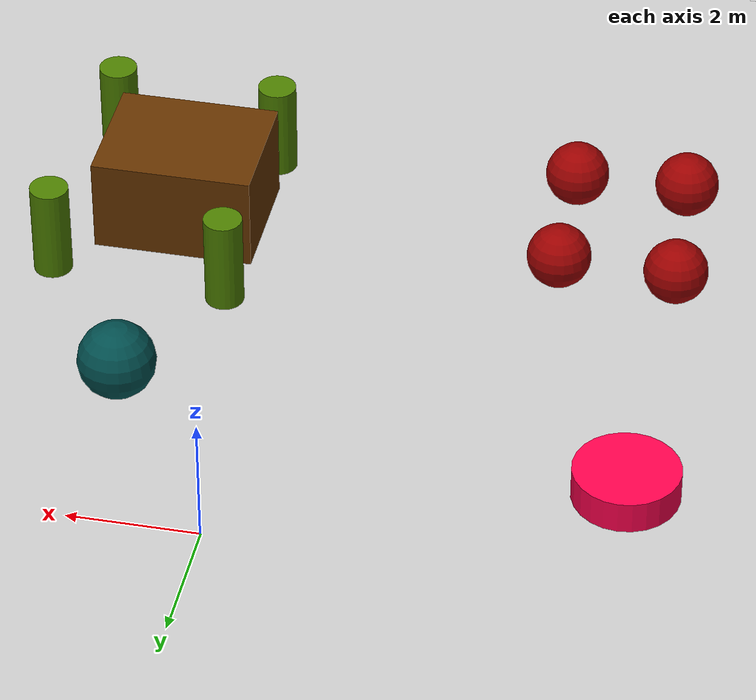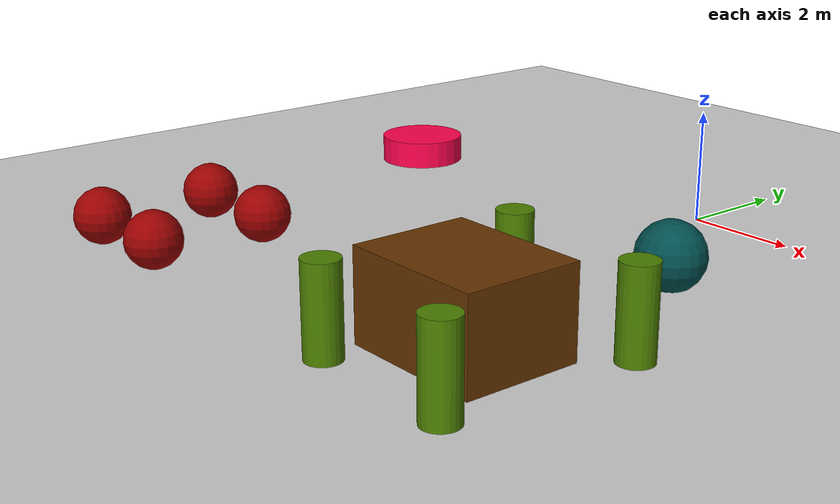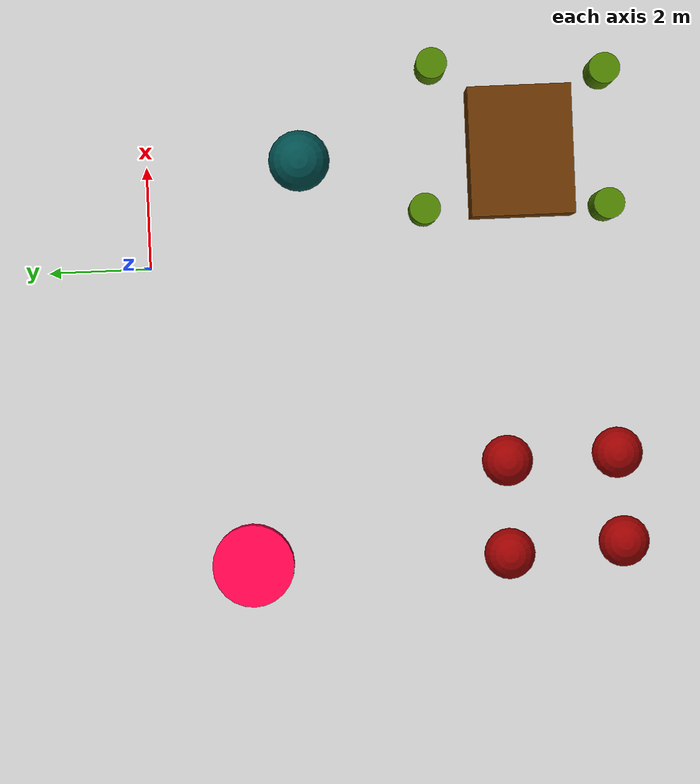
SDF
<sdf version="1.7">
 <world name="default">
  <model name="ground_plane">
   <static>1</static>
   <link name="link">
    <collision name="collision">
     <geometry><plane><normal>0 0 1</normal><size>100 100</size></plane></geometry>
     <surface><friction><ode><mu>100</mu><mu2>50</mu2></ode></friction></surface>
    </collision>
    <visual name="visual">
     <cast_shadows>0</cast_shadows>
     <geometry><plane><normal>0 0 1</normal><size>100 100</size></plane></geometry>
     <material>
      <script><uri>file://media/materials/scripts/gazebo.material</uri><name>Gazebo/Grey</name></script>
     </material>
    </visual>
   </link>
  </model>
  <model name="unit_sphere_1">
   <link name="link">
    <inertial>
     <mass>1</mass>
     <inertia><ixx>0.1</ixx><ixy>0</ixy><ixz>0</ixz><iyy>0.1</iyy><iyz>0</iyz><izz>0.1</izz></inertia>
    </inertial>
    <visual name="visual">
     <geometry><sphere><radius>0.6</radius></sphere></geometry>
     <material>
      <script><name>Gazebo/Grey</name><uri>file://media/materials/scripts/gazebo.material</uri></script>
      <shader type="pixel"><normal_map>__default__</normal_map></shader>
      <ambient>0 0.3 0.3 1</ambient>
      <diffuse>0.7 0.7 0.7 1</diffuse>
      <specular>0.01 0.01 0.01 1</specular>
      <emissive>0 0 0 1</emissive>
     </material>
    </visual>
    <collision name="collision">
     <geometry><sphere><radius>0.6</radius></sphere></geometry>
     <surface>
      <friction>
       <ode><mu>1</mu><mu2>1</mu2><fdir1>0 0 0</fdir1><slip1>0</slip1><slip2>0</slip2></ode>
       <torsional>
        <coefficient>1</coefficient>
        <patch_radius>0</patch_radius>
        <surface_radius>0</surface_radius>
        <use_patch_radius>1</use_patch_radius>
        <ode><slip>0</slip></ode>
       </torsional>
      </friction>
      <bounce><restitution_coefficient>0</restitution_coefficient><threshold>1e+06</threshold></bounce>
      <contact>
       <collide_without_contact>0</collide_without_contact>
       <collide_without_contact_bitmask>1</collide_without_contact_bitmask>
       <collide_bitmask>1</collide_bitmask>
       <ode>
        <soft_cfm>0</soft_cfm>
        <soft_erp>0.2</soft_erp>
        <kp>1e+13</kp>
        <kd>1</kd>
        <max_vel>0.01</max_vel>
        <min_depth>0</min_depth>
       </ode>
       <bullet>
        <split_impulse>1</split_impulse>
        <split_impulse_penetration_threshold>-0.01</split_impulse_penetration_threshold>
        <soft_cfm>0</soft_cfm>
        <soft_erp>0.2</soft_erp>
        <kp>1e+13</kp>
        <kd>1</kd>
       </bullet>
      </contact>
     </surface>
    </collision>
   </link>
   <static>0</static>
   <pose>2 -3 0.5 0 -0 0</pose>
  </model>
  <model name="unit_cylinder_888">
   <link name="link">
    <inertial>
     <mass>1</mass>
     <inertia><ixx>0.145833</ixx><ixy>0</ixy><ixz>0</ixz><iyy>0.145833</iyy><iyz>0</iyz><izz>0.125</izz></inertia>
    </inertial>
    <visual name="visual">
     <geometry><cylinder><radius>0.3</radius><length>2</length></cylinder></geometry>
     <material>
      <script><name>Gazebo/Grey</name><uri>file://media/materials/scripts/gazebo.material</uri></script>
      <shader type="pixel"><normal_map>__default__</normal_map></shader>
      <ambient>0.3 0.5 0 1</ambient>
      <diffuse>0.7 0.7 0.7 1</diffuse>
      <specular>0.01 0.01 0.01 1</specular>
      <emissive>0 0 0 1</emissive>
     </material>
    </visual>
    <collision name="collision">
     <geometry><cylinder><radius>0.3</radius><length>2</length></cylinder></geometry>
     <surface>
      <friction>
       <ode><mu>1</mu><mu2>1</mu2><fdir1>0 0 0</fdir1><slip1>0</slip1><slip2>0</slip2></ode>
       <torsional>
        <coefficient>1</coefficient>
        <patch_radius>0</patch_radius>
        <surface_radius>0</surface_radius>
        <use_patch_radius>1</use_patch_radius>
        <ode><slip>0</slip></ode>
       </torsional>
      </friction>
      <bounce><restitution_coefficient>0</restitution_coefficient><threshold>1e+06</threshold></bounce>
      <contact>
       <collide_without_contact>0</collide_without_contact>
       <collide_without_contact_bitmask>1</collide_without_contact_bitmask>
       <collide_bitmask>1</collide_bitmask>
       <ode>
        <soft_cfm>0</soft_cfm>
        <soft_erp>0.2</soft_erp>
        <kp>1e+13</kp>
        <kd>1</kd>
        <max_vel>0.01</max_vel>
        <min_depth>0</min_depth>
       </ode>
       <bullet>
        <split_impulse>1</split_impulse>
        <split_impulse_penetration_threshold>-0.01</split_impulse_penetration_threshold>
        <soft_cfm>0</soft_cfm>
        <soft_erp>0.2</soft_erp>
        <kp>1e+13</kp>
        <kd>1</kd>
       </bullet>
      </contact>
     </surface>
    </collision>
   </link>
   <static>0</static>
   <pose>0.894721 -8.93658 0.499998 3e-06 -2e-06 0</pose>
  </model>
  <model name="unit_cylinder_888_clone">
   <link name="link">
    <inertial>
     <mass>1</mass>
     <inertia><ixx>0.145833</ixx><ixy>0</ixy><ixz>0</ixz><iyy>0.145833</iyy><iyz>0</iyz><izz>0.125</izz></inertia>
    </inertial>
    <visual name="visual">
     <geometry><cylinder><radius>0.3</radius><length>2</length></cylinder></geometry>
     <material>
      <script><name>Gazebo/Grey</name><uri>file://media/materials/scripts/gazebo.material</uri></script>
      <shader type="pixel"><normal_map>__default__</normal_map></shader>
      <ambient>0.3 0.5 0 1</ambient>
      <diffuse>0.7 0.7 0.7 1</diffuse>
      <specular>0.01 0.01 0.01 1</specular>
      <emissive>0 0 0 1</emissive>
     </material>
    </visual>
    <collision name="collision">
     <geometry><cylinder><radius>0.3</radius><length>2</length></cylinder></geometry>
     <surface>
      <friction>
       <ode><mu>1</mu><mu2>1</mu2><fdir1>0 0 0</fdir1><slip1>0</slip1><slip2>0</slip2></ode>
       <torsional>
        <coefficient>1</coefficient>
        <patch_radius>0</patch_radius>
        <surface_radius>0</surface_radius>
        <use_patch_radius>1</use_patch_radius>
        <ode><slip>0</slip></ode>
       </torsional>
      </friction>
      <bounce><restitution_coefficient>0</restitution_coefficient><threshold>1e+06</threshold></bounce>
      <contact>
       <collide_without_contact>0</collide_without_contact>
       <collide_without_contact_bitmask>1</collide_without_contact_bitmask>
       <collide_bitmask>1</collide_bitmask>
       <ode>
        <soft_cfm>0</soft_cfm>
        <soft_erp>0.2</soft_erp>
        <kp>1e+13</kp>
        <kd>1</kd>
        <max_vel>0.01</max_vel>
        <min_depth>0</min_depth>
       </ode>
       <bullet>
        <split_impulse>1</split_impulse>
        <split_impulse_penetration_threshold>-0.01</split_impulse_penetration_threshold>
        <soft_cfm>0</soft_cfm>
        <soft_erp>0.2</soft_erp>
        <kp>1e+13</kp>
        <kd>1</kd>
       </bullet>
      </contact>
     </surface>
    </collision>
   </link>
   <static>0</static>
   <pose>3.49054 -8.94445 0.499999 3e-06 -2e-06 0</pose>
  </model>
  <model name="unit_cylinder_888_clone_0">
   <link name="link">
    <inertial>
     <mass>1</mass>
     <inertia><ixx>0.145833</ixx><ixy>0</ixy><ixz>0</ixz><iyy>0.145833</iyy><iyz>0</iyz><izz>0.125</izz></inertia>
    </inertial>
    <visual name="visual">
     <geometry><cylinder><radius>0.3</radius><length>2</length></cylinder></geometry>
     <material>
      <script><name>Gazebo/Grey</name><uri>file://media/materials/scripts/gazebo.material</uri></script>
      <shader type="pixel"><normal_map>__default__</normal_map></shader>
      <ambient>0.3 0.5 0 1</ambient>
      <diffuse>0.7 0.7 0.7 1</diffuse>
      <specular>0.01 0.01 0.01 1</specular>
      <emissive>0 0 0 1</emissive>
     </material>
    </visual>
    <collision name="collision">
     <geometry><cylinder><radius>0.3</radius><length>2</length></cylinder></geometry>
     <surface>
      <friction>
       <ode><mu>1</mu><mu2>1</mu2><fdir1>0 0 0</fdir1><slip1>0</slip1><slip2>0</slip2></ode>
       <torsional>
        <coefficient>1</coefficient>
        <patch_radius>0</patch_radius>
        <surface_radius>0</surface_radius>
        <use_patch_radius>1</use_patch_radius>
        <ode><slip>0</slip></ode>
       </torsional>
      </friction>
      <bounce><restitution_coefficient>0</restitution_coefficient><threshold>1e+06</threshold></bounce>
      <contact>
       <collide_without_contact>0</collide_without_contact>
       <collide_without_contact_bitmask>1</collide_without_contact_bitmask>
       <collide_bitmask>1</collide_bitmask>
       <ode>
        <soft_cfm>0</soft_cfm>
        <soft_erp>0.2</soft_erp>
        <kp>1e+13</kp>
        <kd>1</kd>
        <max_vel>0.01</max_vel>
        <min_depth>0</min_depth>
       </ode>
       <bullet>
        <split_impulse>1</split_impulse>
        <split_impulse_penetration_threshold>-0.01</split_impulse_penetration_threshold>
        <soft_cfm>0</soft_cfm>
        <soft_erp>0.2</soft_erp>
        <kp>1e+13</kp>
        <kd>1</kd>
       </bullet>
      </contact>
     </surface>
    </collision>
   </link>
   <static>0</static>
   <pose>0.933945 -5.39637 0.499997 3e-06 -2e-06 0</pose>
  </model>
  <model name="unit_cylinder_888_clone_1">
   <link name="link">
    <inertial>
     <mass>1</mass>
     <inertia><ixx>0.145833</ixx><ixy>0</ixy><ixz>0</ixz><iyy>0.145833</iyy><iyz>0</iyz><izz>0.125</izz></inertia>
    </inertial>
    <visual name="visual">
     <geometry><cylinder><radius>0.3</radius><length>2</length></cylinder></geometry>
     <material>
      <script><name>Gazebo/Grey</name><uri>file://media/materials/scripts/gazebo.material</uri></script>
      <shader type="pixel"><normal_map>__default__</normal_map></shader>
      <ambient>0.3 0.5 0 1</ambient>
      <diffuse>0.7 0.7 0.7 1</diffuse>
      <specular>0.01 0.01 0.01 1</specular>
      <emissive>0 0 0 1</emissive>
     </material>
    </visual>
    <collision name="collision">
     <geometry><cylinder><radius>0.3</radius><length>2</length></cylinder></geometry>
     <surface>
      <friction>
       <ode><mu>1</mu><mu2>1</mu2><fdir1>0 0 0</fdir1><slip1>0</slip1><slip2>0</slip2></ode>
       <torsional>
        <coefficient>1</coefficient>
        <patch_radius>0</patch_radius>
        <surface_radius>0</surface_radius>
        <use_patch_radius>1</use_patch_radius>
        <ode><slip>0</slip></ode>
       </torsional>
      </friction>
      <bounce><restitution_coefficient>0</restitution_coefficient><threshold>1e+06</threshold></bounce>
      <contact>
       <collide_without_contact>0</collide_without_contact>
       <collide_without_contact_bitmask>1</collide_without_contact_bitmask>
       <collide_bitmask>1</collide_bitmask>
       <ode>
        <soft_cfm>0</soft_cfm>
        <soft_erp>0.2</soft_erp>
        <kp>1e+13</kp>
        <kd>1</kd>
        <max_vel>0.01</max_vel>
        <min_depth>0</min_depth>
       </ode>
       <bullet>
        <split_impulse>1</split_impulse>
        <split_impulse_penetration_threshold>-0.01</split_impulse_penetration_threshold>
        <soft_cfm>0</soft_cfm>
        <soft_erp>0.2</soft_erp>
        <kp>1e+13</kp>
        <kd>1</kd>
       </bullet>
      </contact>
     </surface>
    </collision>
   </link>
   <static>0</static>
   <pose>3.72027 -5.62789 0.499997 3e-06 -2e-06 0</pose>
  </model>
  <model name="unit_box8888">
   <link name="link">
    <inertial>
     <mass>1</mass>
     <inertia>
      <ixx>0.166667</ixx>
      <ixy>0</ixy>
      <ixz>0</ixz>
      <iyy>0.166667</iyy>
      <iyz>0</iyz>
      <izz>0.166667</izz>
     </inertia>
    </inertial>
    <visual name="visual">
     <geometry><box><size>2.5 2 2</size></box></geometry>
     <material>
      <script><name>Gazebo/Grey</name><uri>file://media/materials/scripts/gazebo.material</uri></script>
      <shader type="pixel"><normal_map>__default__</normal_map></shader>
      <ambient>0.4 0.2 0 0</ambient>
      <diffuse>0.7 0.7 0.7 1</diffuse>
      <specular>0.01 0.01 0.01 1</specular>
      <emissive>0 0 0 1</emissive>
     </material>
    </visual>
    <collision name="collision">
     <geometry><box><size>2.5 2 2</size></box></geometry>
     <surface>
      <friction>
       <ode><mu>1</mu><mu2>1</mu2><fdir1>0 0 0</fdir1><slip1>0</slip1><slip2>0</slip2></ode>
       <torsional>
        <coefficient>1</coefficient>
        <patch_radius>0</patch_radius>
        <surface_radius>0</surface_radius>
        <use_patch_radius>1</use_patch_radius>
        <ode><slip>0</slip></ode>
       </torsional>
      </friction>
      <bounce><restitution_coefficient>0</restitution_coefficient><threshold>1e+06</threshold></bounce>
      <contact>
       <collide_without_contact>0</collide_without_contact>
       <collide_without_contact_bitmask>1</collide_without_contact_bitmask>
       <collide_bitmask>1</collide_bitmask>
       <ode>
        <soft_cfm>0</soft_cfm>
        <soft_erp>0.2</soft_erp>
        <kp>1e+13</kp>
        <kd>1</kd>
        <max_vel>0.01</max_vel>
        <min_depth>0</min_depth>
       </ode>
       <bullet>
        <split_impulse>1</split_impulse>
        <split_impulse_penetration_threshold>-0.01</split_impulse_penetration_threshold>
        <soft_cfm>0</soft_cfm>
        <soft_erp>0.2</soft_erp>
        <kp>1e+13</kp>
        <kd>1</kd>
       </bullet>
      </contact>
     </surface>
    </collision>
   </link>
   <static>0</static>
   <pose>1.98435 -7.28676 0.499995 1e-05 -0 0</pose>
  </model>
  <model name="unit_cylinder_777">
   <link name="link">
    <inertial>
     <mass>1</mass>
     <inertia><ixx>0.145833</ixx><ixy>0</ixy><ixz>0</ixz><iyy>0.145833</iyy><iyz>0</iyz><izz>0.125</izz></inertia>
    </inertial>
    <visual name="visual">
     <geometry><cylinder><radius>0.8</radius><length>0.5</length></cylinder></geometry>
     <material>
      <script><name>Gazebo/Grey</name><uri>file://media/materials/scripts/gazebo.material</uri></script>
      <shader type="pixel"><normal_map>__default__</normal_map></shader>
      <ambient>1 0 0.3 1</ambient>
      <diffuse>0.7 0.7 0.7 1</diffuse>
      <specular>0.01 0.01 0.01 1</specular>
      <emissive>0 0 0 1</emissive>
     </material>
    </visual>
    <collision name="collision">
     <geometry><cylinder><radius>0.8</radius><length>0.5</length></cylinder></geometry>
     <surface>
      <friction>
       <ode><mu>1</mu><mu2>1</mu2><fdir1>0 0 0</fdir1><slip1>0</slip1><slip2>0</slip2></ode>
       <torsional>
        <coefficient>1</coefficient>
        <patch_radius>0</patch_radius>
        <surface_radius>0</surface_radius>
        <use_patch_radius>1</use_patch_radius>
        <ode><slip>0</slip></ode>
       </torsional>
      </friction>
      <bounce><restitution_coefficient>0</restitution_coefficient><threshold>1e+06</threshold></bounce>
      <contact>
       <collide_without_contact>0</collide_without_contact>
       <collide_without_contact_bitmask>1</collide_without_contact_bitmask>
       <collide_bitmask>1</collide_bitmask>
       <ode>
        <soft_cfm>0</soft_cfm>
        <soft_erp>0.2</soft_erp>
        <kp>1e+13</kp>
        <kd>1</kd>
        <max_vel>0.01</max_vel>
        <min_depth>0</min_depth>
       </ode>
       <bullet>
        <split_impulse>1</split_impulse>
        <split_impulse_penetration_threshold>-0.01</split_impulse_penetration_threshold>
        <soft_cfm>0</soft_cfm>
        <soft_erp>0.2</soft_erp>
        <kp>1e+13</kp>
        <kd>1</kd>
       </bullet>
      </contact>
     </surface>
    </collision>
   </link>
   <static>0</static>
   <pose>-5.8537 -1.79696 0.499998 3e-06 -4e-06 0</pose>
  </model>
  <model name="unit_sphere_333">
   <link name="link">
    <inertial>
     <mass>1</mass>
     <inertia><ixx>0.1</ixx><ixy>0</ixy><ixz>0</ixz><iyy>0.1</iyy><iyz>0</iyz><izz>0.1</izz></inertia>
    </inertial>
    <visual name="visual">
     <geometry><sphere><radius>0.5</radius></sphere></geometry>
     <material>
      <script><name>Gazebo/Grey</name><uri>file://media/materials/scripts/gazebo.material</uri></script>
      <shader type="pixel"><normal_map>__default__</normal_map></shader>
      <ambient>0.6 0 0 0</ambient>
      <diffuse>0.7 0.7 0.7 1</diffuse>
      <specular>0.01 0.01 0.01 1</specular>
      <emissive>0 0 0 1</emissive>
     </material>
    </visual>
    <collision name="collision">
     <geometry><sphere><radius>0.5</radius></sphere></geometry>
     <surface>
      <friction>
       <ode><mu>1</mu><mu2>1</mu2><fdir1>0 0 0</fdir1><slip1>0</slip1><slip2>0</slip2></ode>
       <torsional>
        <coefficient>1</coefficient>
        <patch_radius>0</patch_radius>
        <surface_radius>0</surface_radius>
        <use_patch_radius>1</use_patch_radius>
        <ode><slip>0</slip></ode>
       </torsional>
      </friction>
      <bounce><restitution_coefficient>0</restitution_coefficient><threshold>1e+06</threshold></bounce>
      <contact>
       <collide_without_contact>0</collide_without_contact>
       <collide_without_contact_bitmask>1</collide_without_contact_bitmask>
       <collide_bitmask>1</collide_bitmask>
       <ode>
        <soft_cfm>0</soft_cfm>
        <soft_erp>0.2</soft_erp>
        <kp>1e+13</kp>
        <kd>1</kd>
        <max_vel>0.01</max_vel>
        <min_depth>0</min_depth>
       </ode>
       <bullet>
        <split_impulse>1</split_impulse>
        <split_impulse_penetration_threshold>-0.01</split_impulse_penetration_threshold>
        <soft_cfm>0</soft_cfm>
        <soft_erp>0.2</soft_erp>
        <kp>1e+13</kp>
        <kd>1</kd>
       </bullet>
      </contact>
     </surface>
    </collision>
   </link>
   <static>0</static>
   <pose>-4.01157 -6.82735 0.5 0 -0 0</pose>
  </model>
  <model name="unit_sphere_333_clone">
   <link name="link">
    <inertial>
     <mass>1</mass>
     <inertia><ixx>0.1</ixx><ixy>0</ixy><ixz>0</ixz><iyy>0.1</iyy><iyz>0</iyz><izz>0.1</izz></inertia>
    </inertial>
    <visual name="visual">
     <geometry><sphere><radius>0.5</radius></sphere></geometry>
     <material>
      <script><name>Gazebo/Grey</name><uri>file://media/materials/scripts/gazebo.material</uri></script>
      <shader type="pixel"><normal_map>__default__</normal_map></shader>
      <ambient>0.6 0 0 0</ambient>
      <diffuse>0.7 0.7 0.7 1</diffuse>
      <specular>0.01 0.01 0.01 1</specular>
      <emissive>0 0 0 1</emissive>
     </material>
    </visual>
    <collision name="collision">
     <geometry><sphere><radius>0.5</radius></sphere></geometry>
     <surface>
      <friction>
       <ode><mu>1</mu><mu2>1</mu2><fdir1>0 0 0</fdir1><slip1>0</slip1><slip2>0</slip2></ode>
       <torsional>
        <coefficient>1</coefficient>
        <patch_radius>0</patch_radius>
        <surface_radius>0</surface_radius>
        <use_patch_radius>1</use_patch_radius>
        <ode><slip>0</slip></ode>
       </torsional>
      </friction>
      <bounce><restitution_coefficient>0</restitution_coefficient><threshold>1e+06</threshold></bounce>
      <contact>
       <collide_without_contact>0</collide_without_contact>
       <collide_without_contact_bitmask>1</collide_without_contact_bitmask>
       <collide_bitmask>1</collide_bitmask>
       <ode>
        <soft_cfm>0</soft_cfm>
        <soft_erp>0.2</soft_erp>
        <kp>1e+13</kp>
        <kd>1</kd>
        <max_vel>0.01</max_vel>
        <min_depth>0</min_depth>
       </ode>
       <bullet>
        <split_impulse>1</split_impulse>
        <split_impulse_penetration_threshold>-0.01</split_impulse_penetration_threshold>
        <soft_cfm>0</soft_cfm>
        <soft_erp>0.2</soft_erp>
        <kp>1e+13</kp>
        <kd>1</kd>
       </bullet>
      </contact>
     </surface>
    </collision>
   </link>
   <static>0</static>
   <pose>-5.82781 -6.80076 0.5 0 -0 0</pose>
  </model>
  <model name="unit_sphere_333_clone_0">
   <link name="link">
    <inertial>
     <mass>1</mass>
     <inertia><ixx>0.1</ixx><ixy>0</ixy><ixz>0</ixz><iyy>0.1</iyy><iyz>0</iyz><izz>0.1</izz></inertia>
    </inertial>
    <visual name="visual">
     <geometry><sphere><radius>0.5</radius></sphere></geometry>
     <material>
      <script><name>Gazebo/Grey</name><uri>file://media/materials/scripts/gazebo.material</uri></script>
      <shader type="pixel"><normal_map>__default__</normal_map></shader>
      <ambient>0.6 0 0 0</ambient>
      <diffuse>0.7 0.7 0.7 1</diffuse>
      <specular>0.01 0.01 0.01 1</specular>
      <emissive>0 0 0 1</emissive>
     </material>
    </visual>
    <collision name="collision">
     <geometry><sphere><radius>0.5</radius></sphere></geometry>
     <surface>
      <friction>
       <ode><mu>1</mu><mu2>1</mu2><fdir1>0 0 0</fdir1><slip1>0</slip1><slip2>0</slip2></ode>
       <torsional>
        <coefficient>1</coefficient>
        <patch_radius>0</patch_radius>
        <surface_radius>0</surface_radius>
        <use_patch_radius>1</use_patch_radius>
        <ode><slip>0</slip></ode>
       </torsional>
      </friction>
      <bounce><restitution_coefficient>0</restitution_coefficient><threshold>1e+06</threshold></bounce>
      <contact>
       <collide_without_contact>0</collide_without_contact>
       <collide_without_contact_bitmask>1</collide_without_contact_bitmask>
       <collide_bitmask>1</collide_bitmask>
       <ode>
        <soft_cfm>0</soft_cfm>
        <soft_erp>0.2</soft_erp>
        <kp>1e+13</kp>
        <kd>1</kd>
        <max_vel>0.01</max_vel>
        <min_depth>0</min_depth>
       </ode>
       <bullet>
        <split_impulse>1</split_impulse>
        <split_impulse_penetration_threshold>-0.01</split_impulse_penetration_threshold>
        <soft_cfm>0</soft_cfm>
        <soft_erp>0.2</soft_erp>
        <kp>1e+13</kp>
        <kd>1</kd>
       </bullet>
      </contact>
     </surface>
    </collision>
   </link>
   <static>0</static>
   <pose>-3.93974 -8.97442 0.5 0 -0 0</pose>
  </model>
  <model name="unit_sphere_333_clone_1">
   <link name="link">
    <inertial>
     <mass>1</mass>
     <inertia><ixx>0.1</ixx><ixy>0</ixy><ixz>0</ixz><iyy>0.1</iyy><iyz>0</iyz><izz>0.1</izz></inertia>
    </inertial>
    <visual name="visual">
     <geometry><sphere><radius>0.5</radius></sphere></geometry>
     <material>
      <script><name>Gazebo/Grey</name><uri>file://media/materials/scripts/gazebo.material</uri></script>
      <shader type="pixel"><normal_map>__default__</normal_map></shader>
      <ambient>0.6 0 0 0</ambient>
      <diffuse>0.7 0.7 0.7 1</diffuse>
      <specular>0.01 0.01 0.01 1</specular>
      <emissive>0 0 0 1</emissive>
     </material>
    </visual>
    <collision name="collision">
     <geometry><sphere><radius>0.5</radius></sphere></geometry>
     <surface>
      <friction>
       <ode><mu>1</mu><mu2>1</mu2><fdir1>0 0 0</fdir1><slip1>0</slip1><slip2>0</slip2></ode>
       <torsional>
        <coefficient>1</coefficient>
        <patch_radius>0</patch_radius>
        <surface_radius>0</surface_radius>
        <use_patch_radius>1</use_patch_radius>
        <ode><slip>0</slip></ode>
       </torsional>
      </friction>
      <bounce><restitution_coefficient>0</restitution_coefficient><threshold>1e+06</threshold></bounce>
      <contact>
       <collide_without_contact>0</collide_without_contact>
       <collide_without_contact_bitmask>1</collide_without_contact_bitmask>
       <collide_bitmask>1</collide_bitmask>
       <ode>
        <soft_cfm>0</soft_cfm>
        <soft_erp>0.2</soft_erp>
        <kp>1e+13</kp>
        <kd>1</kd>
        <max_vel>0.01</max_vel>
        <min_depth>0</min_depth>
       </ode>
       <bullet>
        <split_impulse>1</split_impulse>
        <split_impulse_penetration_threshold>-0.01</split_impulse_penetration_threshold>
        <soft_cfm>0</soft_cfm>
        <soft_erp>0.2</soft_erp>
        <kp>1e+13</kp>
        <kd>1</kd>
       </bullet>
      </contact>
     </surface>
    </collision>
   </link>
   <static>0</static>
   <pose>-5.67198 -9.03746 0.5 0 -0 0</pose>
  </model>
 </world>
</sdf>
